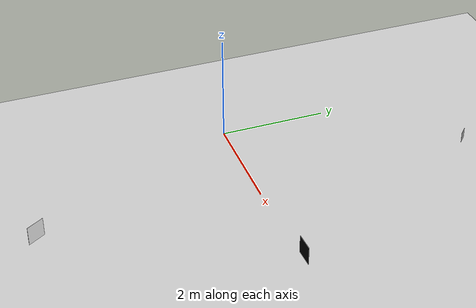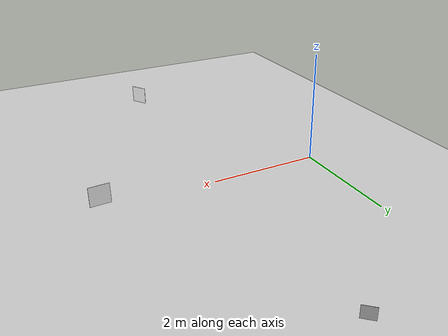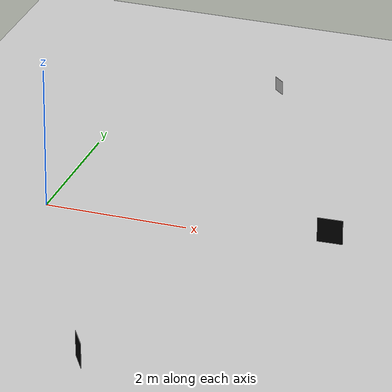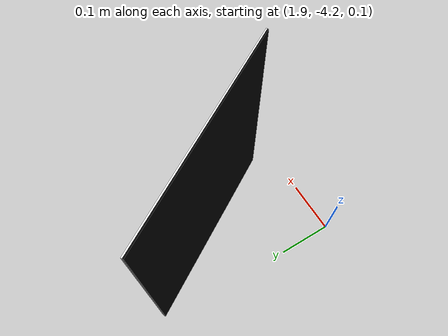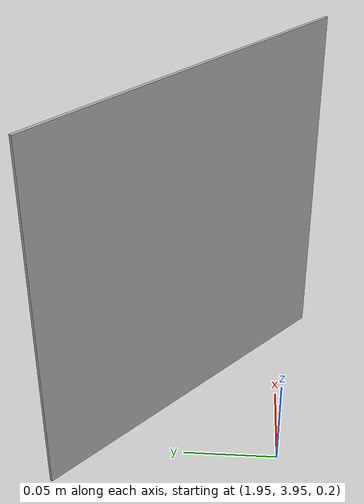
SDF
<?xml version="1.0" ?>
<sdf version="1.5">
  <world name="default">
    <!-- A global light source -->
    <include>
      <uri>model://sun</uri>
    </include>
    <model name="aruco_marker_0">
      <pose>2 4 0.3 0 0 0.826765</pose>
      <include>
        <name>aruco_marker_0</name>
        <uri>model://aruco_marker_0</uri>
      </include>
    </model>

    <model name="aruco_marker_1">
      <pose>4 0 0.3 0 0 0.034674</pose>
      <include>
        <name>aruco_marker_1</name>
        <uri>model://aruco_marker_1</uri>
      </include>
    </model>

    <model name="aruco_marker_2">
      <pose>2.0 -4 0.3 0 0 -1.018591</pose>
      <include>
        <name>aruco_marker_2</name>
        <uri>model://aruco_marker_2</uri>
      </include>
    </model>

    <!-- A ground plane -->
    <include>
      <uri>model://ground_plane</uri>
    </include>
    <gui fullscreen='0'>
      <camera name='user_camera'>
        <pose frame=''>-15.6267 -2.50081 7.36249 0 0.331643 0.180194</pose>
        <view_controller>orbit</view_controller>
        <projection_type>perspective</projection_type>
      </camera>
    </gui>
  </world>
</sdf>

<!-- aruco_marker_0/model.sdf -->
<sdf version='1.6'>
  <model name='aruco_marker_0'>
    <link name='link_0'>
      <pose frame=''>0 0 0 0 -0 0</pose>
      <inertial>
        <mass>1</mass>
        <inertia>
          <ixx>0</ixx>
          <ixy>0</ixy>
          <ixz>0</ixz>
          <iyy>0</iyy>
          <iyz>0</iyz>
          <izz>0</izz>
        </inertia>
      </inertial>
      <visual name='visual'>
        <pose frame=''>0 0 0 0 -0 0</pose>
        <geometry>
          <mesh>
            <uri>file://isr-testbed/aruco_marker_0/aruco_marker_0.dae</uri>
            <scale>0.1 0.1 0.1</scale>
          </mesh>
        </geometry>
        <material>
          <lighting>1</lighting>
          <script>
            <uri>file://media/materials/scripts/gazebo.material</uri>
            <name>Gazebo/DepthMapVS</name>
          </script>
          <ambient>0.3 0.3 0.3 1</ambient>
          <diffuse>0.7 0.7 0.7 1</diffuse>
          <specular>0.01 0.01 0.01 1</specular>
          <emissive>0 0 0 1</emissive>
        </material>
        <transparency>0</transparency>
        <cast_shadows>1</cast_shadows>
      </visual>
      <collision name='collision'>
        <laser_retro>0</laser_retro>
        <max_contacts>10</max_contacts>
        <pose frame=''>0 0 0 0 -0 0</pose>
        <geometry>
          <mesh>
            <uri>file://isr-testbed/aruco_marker_0/aruco_marker_0.dae</uri>
            <scale>0.1 0.1 0.1</scale>
          </mesh>
        </geometry>
        <surface>
          <friction>
            <ode>
              <mu>1</mu>
              <mu2>1</mu2>
              <fdir1>0 0 0</fdir1>
              <slip1>0</slip1>
              <slip2>0</slip2>
            </ode>
            <torsional>
              <coefficient>1</coefficient>
              <patch_radius>0</patch_radius>
              <surface_radius>0</surface_radius>
              <use_patch_radius>1</use_patch_radius>
              <ode>
                <slip>0</slip>
              </ode>
            </torsional>
          </friction>
          <bounce>
            <restitution_coefficient>0</restitution_coefficient>
            <threshold>1e+06</threshold>
          </bounce>
          <contact>
            <collide_without_contact>0</collide_without_contact>
            <collide_without_contact_bitmask>1</collide_without_contact_bitmask>
            <collide_bitmask>1</collide_bitmask>
            <ode>
              <soft_cfm>0</soft_cfm>
              <soft_erp>0.2</soft_erp>
              <kp>1e+13</kp>
              <kd>1</kd>
              <max_vel>0.01</max_vel>
              <min_depth>0</min_depth>
            </ode>
            <bullet>
              <split_impulse>1</split_impulse>
              <split_impulse_penetration_threshold>-0.01</split_impulse_penetration_threshold>
              <soft_cfm>0</soft_cfm>
              <soft_erp>0.2</soft_erp>
              <kp>1e+13</kp>
              <kd>1</kd>
            </bullet>
          </contact>
        </surface>
      </collision>
    </link>
    <static>1</static>
    <allow_auto_disable>1</allow_auto_disable>
  </model>
</sdf>

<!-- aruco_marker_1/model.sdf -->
<sdf version="1.9">
  <model name="aruco_marker_1">
    <static>true</static>

    <link name="link">
      <visual name="front">
        <pose>0 0 0 0 0 0</pose>
        <geometry>
          <box>
            <size>0.35 0.002 0.35</size>
          </box>
        </geometry>

        <material>
          <ambient>1 1 1 1</ambient>
          <diffuse>1 1 1 1</diffuse>
          <specular>0.1 0.1 0.1 1</specular>
          <emissive>0 0 0 1</emissive>

          <pbr>
            <metal>
              <albedo_map>
                model://aruco/aruco_marker_1/materials/textures/marker_1.png
              </albedo_map>
              <emissive_map>
                model://aruco/aruco_marker_1/materials/textures/marker_1.png
              </emissive_map>
            </metal>
          </pbr>
        </material>
      </visual>

      <visual name="back">
        <pose>0 -0.002 0 0 0 3.1416</pose>
        <geometry>
          <box>
            <size>0.35 0.002 0.35</size>
          </box>
        </geometry>
        <material>
          <ambient>0 0 0 1</ambient>
          <diffuse>0 0 0 1</diffuse>
        </material>
      </visual>

    </link>

  </model>
</sdf>

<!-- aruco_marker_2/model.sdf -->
<sdf version="1.9">
  <model name="aruco_marker_2">
    <static>true</static>

    <link name="link">
      <visual name="front">
        <pose>0 0 0 0 0 0</pose>
        <geometry>
          <box>
            <size>0.35 0.002 0.35</size>
          </box>
        </geometry>

        <material>
          <ambient>1 1 1 1</ambient>
          <diffuse>1 1 1 1</diffuse>
          <specular>0.1 0.1 0.1 1</specular>
          <emissive>0 0 0 1</emissive>

          <pbr>
            <metal>
              <albedo_map>
                model://aruco/aruco_marker_2/materials/textures/marker_2.png
              </albedo_map>
              <emissive_map>
                model://aruco/aruco_marker_2/materials/textures/marker_2.png
              </emissive_map>
            </metal>
          </pbr>
        </material>
      </visual>

      <visual name="back">
        <pose>0 -0.002 0 0 0 3.1416</pose>
        <geometry>
          <box>
            <size>0.35 0.002 0.35</size>
          </box>
        </geometry>
        <material>
          <ambient>0 0 0 1</ambient>
          <diffuse>0 0 0 1</diffuse>
        </material>
      </visual>

    </link>

  </model>
</sdf>
